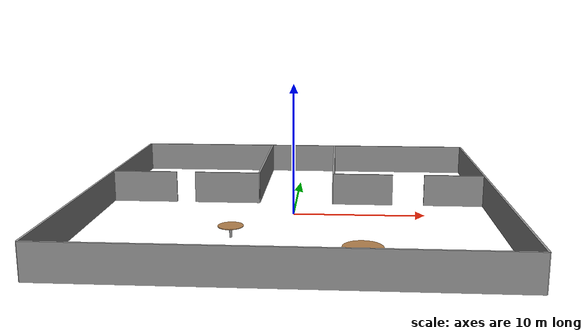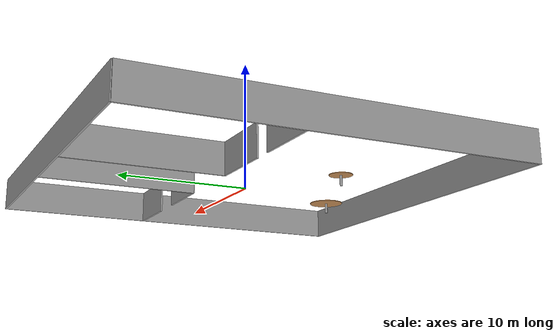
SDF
<?xml version='1.0'?>
<sdf version='1.6'>
  <model name='maze2'>
    <pose frame=''>0 0 0 0 0 0</pose>

    <!-- ===== OUTER BOUNDARY (30 m x 30 m) ===== -->

    <!-- Top wall: y = +15 -->
    <link name='Wall_0'>
      <collision name='Wall_0_Collision'>
        <geometry>
          <box><size>30 0.15 2.5</size></box>
        </geometry>
        <pose frame=''>0 0 1.25 0 -0 0</pose>
      </collision>
      <visual name='Wall_0_Visual'>
        <pose frame=''>0 0 1.25 0 -0 0</pose>
        <geometry>
          <box><size>30 0.15 2.5</size></box>
        </geometry>
        <material>
          <script>
            <uri>file://media/materials/scripts/gazebo.material</uri>
            <name>Gazebo/Grey</name>
          </script>
          <ambient>1 1 1 1</ambient>
        </material>
      </visual>
      <pose frame=''>0 15 0 0 -0 0</pose>
    </link>

    <!-- Right wall: x = +15 -->
    <link name='Wall_1'>
      <collision name='Wall_1_Collision'>
        <geometry>
          <box><size>30 0.15 2.5</size></box>
        </geometry>
        <pose frame=''>0 0 1.25 0 -0 0</pose>
      </collision>
      <visual name='Wall_1_Visual'>
        <pose frame=''>0 0 1.25 0 -0 0</pose>
        <geometry>
          <box><size>30 0.15 2.5</size></box>
        </geometry>
        <material>
          <script>
            <uri>file://media/materials/scripts/gazebo.material</uri>
            <name>Gazebo/Grey</name>
          </script>
          <ambient>1 1 1 1</ambient>
        </material>
      </visual>
      <pose frame=''>15 0 0 0 0 -1.5708</pose>
    </link>

    <!-- Bottom wall: y = -15 -->
    <link name='Wall_2'>
      <collision name='Wall_2_Collision'>
        <geometry>
          <box><size>30 0.15 2.5</size></box>
        </geometry>
        <pose frame=''>0 0 1.25 0 -0 0</pose>
      </collision>
      <visual name='Wall_2_Visual'>
        <pose frame=''>0 0 1.25 0 -0 0</pose>
        <geometry>
          <box><size>30 0.15 2.5</size></box>
        </geometry>
        <material>
          <script>
            <uri>file://media/materials/scripts/gazebo.material</uri>
            <name>Gazebo/Grey</name>
          </script>
          <ambient>1 1 1 1</ambient>
        </material>
      </visual>
      <pose frame=''>0 -15 0 0 -0 3.14159</pose>
    </link>

    <!-- Left wall: x = -15 -->
    <link name='Wall_3'>
      <collision name='Wall_3_Collision'>
        <geometry>
          <box><size>30 0.15 2.5</size></box>
        </geometry>
        <pose frame=''>0 0 1.25 0 -0 0</pose>
      </collision>
      <visual name='Wall_3_Visual'>
        <pose frame=''>0 0 1.25 0 -0 0</pose>
        <geometry>
          <box><size>30 0.15 2.5</size></box>
        </geometry>
        <material>
          <script>
            <uri>file://media/materials/scripts/gazebo.material</uri>
            <name>Gazebo/Grey</name>
          </script>
          <ambient>1 1 1 1</ambient>
        </material>
      </visual>
      <pose frame=''>-15 0 0 0 -0 1.5708</pose>
    </link>

    <!-- ===== ROOM 1 (top-left, x: -15 to -3, y: 3 to 15) =====
         Door 1 is SMALLER: 1.5 m wide, centered at x = -9
         Door gap: x = -9.75 to x = -8.25
    -->

    <!-- Room1 bottom wall — left segment (x: -15 to -9.75, length 5.25 m) -->
    <link name='Wall_4'>
      <collision name='Wall_4_Collision'>
        <geometry>
          <box><size>5.25 0.15 2.5</size></box>
        </geometry>
        <pose frame=''>0 0 1.25 0 -0 0</pose>
      </collision>
      <visual name='Wall_4_Visual'>
        <pose frame=''>0 0 1.25 0 -0 0</pose>
        <geometry>
          <box><size>5.25 0.15 2.5</size></box>
        </geometry>
        <material>
          <script>
            <uri>file://media/materials/scripts/gazebo.material</uri>
            <name>Gazebo/Grey</name>
          </script>
          <ambient>1 1 1 1</ambient>
        </material>
      </visual>
      <pose frame=''>-12.375 3 0 0 -0 0</pose>
    </link>

    <!-- Room1 bottom wall — right segment (x: -8.25 to -3, length 5.25 m) -->
    <link name='Wall_5'>
      <collision name='Wall_5_Collision'>
        <geometry>
          <box><size>5.25 0.15 2.5</size></box>
        </geometry>
        <pose frame=''>0 0 1.25 0 -0 0</pose>
      </collision>
      <visual name='Wall_5_Visual'>
        <pose frame=''>0 0 1.25 0 -0 0</pose>
        <geometry>
          <box><size>5.25 0.15 2.5</size></box>
        </geometry>
        <material>
          <script>
            <uri>file://media/materials/scripts/gazebo.material</uri>
            <name>Gazebo/Grey</name>
          </script>
          <ambient>1 1 1 1</ambient>
        </material>
      </visual>
      <pose frame=''>-5.625 3 0 0 -0 0</pose>
    </link>

    <!-- Room1 right wall (x = -3, y: 3 to 15, length 12 m) -->
    <link name='Wall_6'>
      <collision name='Wall_6_Collision'>
        <geometry>
          <box><size>12 0.15 2.5</size></box>
        </geometry>
        <pose frame=''>0 0 1.25 0 -0 0</pose>
      </collision>
      <visual name='Wall_6_Visual'>
        <pose frame=''>0 0 1.25 0 -0 0</pose>
        <geometry>
          <box><size>12 0.15 2.5</size></box>
        </geometry>
        <material>
          <script>
            <uri>file://media/materials/scripts/gazebo.material</uri>
            <name>Gazebo/Grey</name>
          </script>
          <ambient>1 1 1 1</ambient>
        </material>
      </visual>
      <pose frame=''>-3 9 0 0 0 1.5708</pose>
    </link>

    <!-- ===== ROOM 2 (top-right, x: 3 to 15, y: 3 to 15) =====
         Door 2 is LARGER: 2.5 m wide, centered at x = +9
         Door gap: x = 7.75 to x = 10.25
    -->

    <!-- Room2 bottom wall — left segment (x: 3 to 7.75, length 4.75 m) -->
    <link name='Wall_7'>
      <collision name='Wall_7_Collision'>
        <geometry>
          <box><size>4.75 0.15 2.5</size></box>
        </geometry>
        <pose frame=''>0 0 1.25 0 -0 0</pose>
      </collision>
      <visual name='Wall_7_Visual'>
        <pose frame=''>0 0 1.25 0 -0 0</pose>
        <geometry>
          <box><size>4.75 0.15 2.5</size></box>
        </geometry>
        <material>
          <script>
            <uri>file://media/materials/scripts/gazebo.material</uri>
            <name>Gazebo/Grey</name>
          </script>
          <ambient>1 1 1 1</ambient>
        </material>
      </visual>
      <pose frame=''>5.375 3 0 0 -0 0</pose>
    </link>

    <!-- Room2 bottom wall — right segment (x: 10.25 to 15, length 4.75 m) -->
    <link name='Wall_8'>
      <collision name='Wall_8_Collision'>
        <geometry>
          <box><size>4.75 0.15 2.5</size></box>
        </geometry>
        <pose frame=''>0 0 1.25 0 -0 0</pose>
      </collision>
      <visual name='Wall_8_Visual'>
        <pose frame=''>0 0 1.25 0 -0 0</pose>
        <geometry>
          <box><size>4.75 0.15 2.5</size></box>
        </geometry>
        <material>
          <script>
            <uri>file://media/materials/scripts/gazebo.material</uri>
            <name>Gazebo/Grey</name>
          </script>
          <ambient>1 1 1 1</ambient>
        </material>
      </visual>
      <pose frame=''>12.625 3 0 0 -0 0</pose>
    </link>

    <!-- Room2 left wall (x = +3, y: 3 to 15, length 12 m) -->
    <link name='Wall_9'>
      <collision name='Wall_9_Collision'>
        <geometry>
          <box><size>12 0.15 2.5</size></box>
        </geometry>
        <pose frame=''>0 0 1.25 0 -0 0</pose>
      </collision>
      <visual name='Wall_9_Visual'>
        <pose frame=''>0 0 1.25 0 -0 0</pose>
        <geometry>
          <box><size>12 0.15 2.5</size></box>
        </geometry>
        <material>
          <script>
            <uri>file://media/materials/scripts/gazebo.material</uri>
            <name>Gazebo/Grey</name>
          </script>
          <ambient>1 1 1 1</ambient>
        </material>
      </visual>
      <pose frame=''>3 9 0 0 0 1.5708</pose>
    </link>

    <link name='Table_1'>
      <!-- Column -->
      <collision name='Table_1_Column_Collision'>
        <geometry>
          <cylinder>
            <radius>0.1</radius>
            <length>0.792</length>
          </cylinder>
        </geometry>
        <pose frame=''>0 0 0.396 0 0 0</pose>
      </collision>
      <visual name='Table_1_Column_Visual'>
        <pose frame=''>0 0 0.396 0 0 0</pose>
        <geometry>
          <cylinder>
            <radius>0.1</radius>
            <length>0.792</length>
          </cylinder>
        </geometry>
        <material>
          <script>
            <uri>file://media/materials/scripts/gazebo.material</uri>
            <name>Gazebo/Grey</name>
          </script>
          <ambient>0.6 0.6 0.6 1</ambient>
        </material>
      </visual>
      <!-- Table top -->
      <collision name='Table_1_Top_Collision'>
        <geometry>
          <cylinder>
            <radius>0.9</radius>
            <length>0.05</length>
          </cylinder>
        </geometry>
        <pose frame=''>0 0 0.817 0 0 0</pose>
      </collision>
      <visual name='Table_1_Top_Visual'>
        <pose frame=''>0 0 0.817 0 0 0</pose>
        <geometry>
          <cylinder>
            <radius>0.9</radius>
            <length>0.05</length>
          </cylinder>
        </geometry>
        <material>
          <script>
            <uri>file://media/materials/scripts/gazebo.material</uri>
            <name>Gazebo/Wood</name>
          </script>
          <ambient>1 1 1 1</ambient>
        </material>
      </visual>
      <pose frame=''>-4 -6 0 0 0 0</pose>
    </link>

    <link name='Table_2'>
      <!-- Column -->
      <collision name='Table_2_Column_Collision'>
        <geometry>
          <cylinder>
            <radius>0.1</radius>
            <length>0.792</length>
          </cylinder>
        </geometry>
        <pose frame=''>0 0 0.396 0 0 0</pose>
      </collision>
      <visual name='Table_2_Column_Visual'>
        <pose frame=''>0 0 0.396 0 0 0</pose>
        <geometry>
          <cylinder>
            <radius>0.1</radius>
            <length>0.792</length>
          </cylinder>
        </geometry>
        <material>
          <script>
            <uri>file://media/materials/scripts/gazebo.material</uri>
            <name>Gazebo/Grey</name>
          </script>
          <ambient>0.6 0.6 0.6 1</ambient>
        </material>
      </visual>
      <!-- Table top -->
      <collision name='Table_2_Top_Collision'>
        <geometry>
          <cylinder>
            <radius>1.35</radius>
            <length>0.05</length>
          </cylinder>
        </geometry>
        <pose frame=''>0 0 0.817 0 0 0</pose>
      </collision>
      <visual name='Table_2_Top_Visual'>
        <pose frame=''>0 0 0.817 0 0 0</pose>
        <geometry>
          <cylinder>
            <radius>1.35</radius>
            <length>0.05</length>
          </cylinder>
        </geometry>
        <material>
          <script>
            <uri>file://media/materials/scripts/gazebo.material</uri>
            <name>Gazebo/Wood</name>
          </script>
          <ambient>1 1 1 1</ambient>
        </material>
      </visual>
      <pose frame=''>5 -10 0 0 0 0</pose>
    </link>

    <static>1</static>
  </model>
</sdf>
